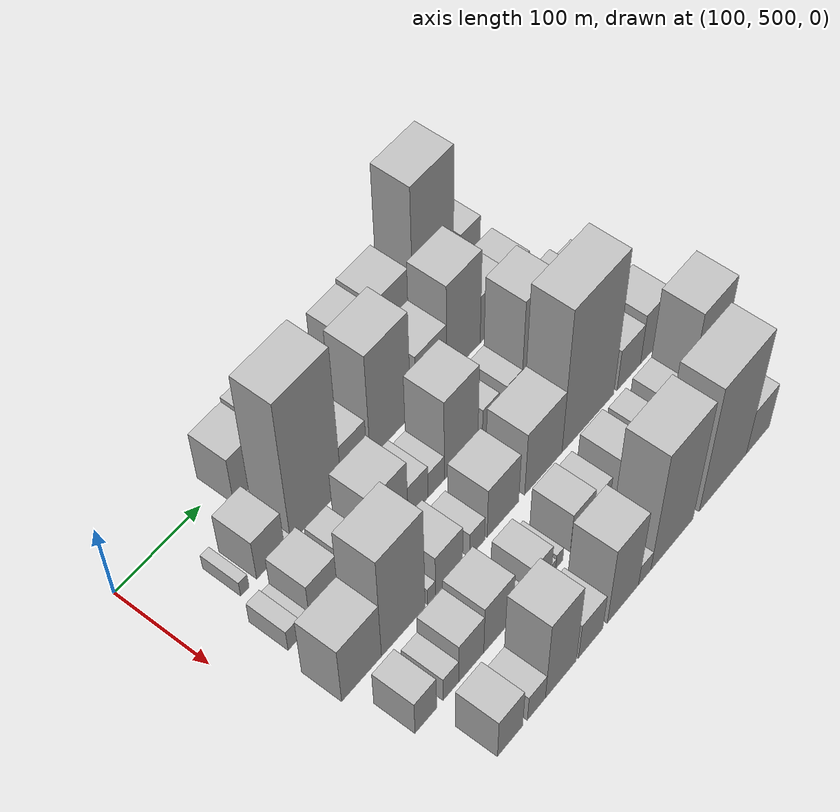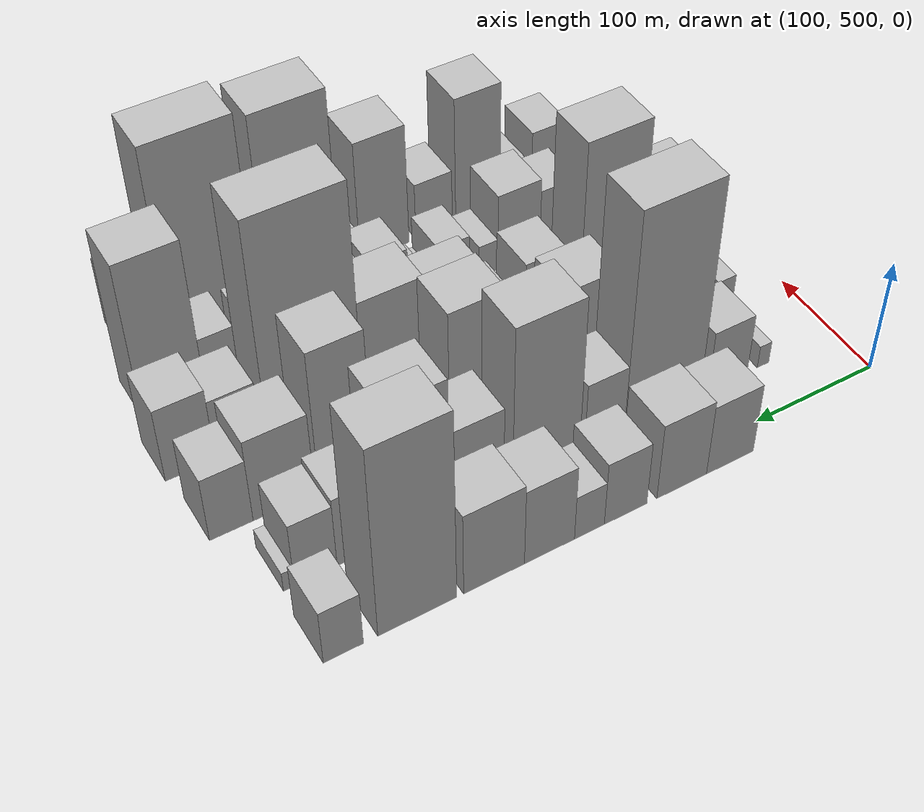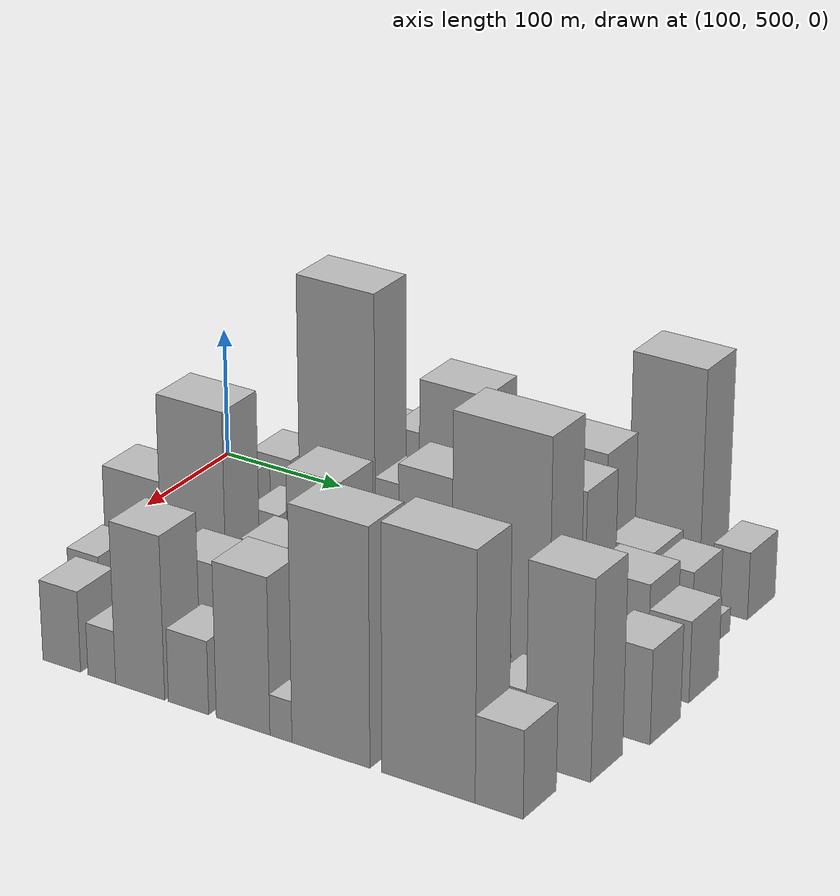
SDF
<sdf version="1.6">
 <world name="default">
  <model name="building_45">
   <static>1</static>
   <pose>100.0000 637.8014 0 0.000000 0.000000 0.000000</pose>
   <link name="link">
    <pose>0 0 33.00 0 0 0</pose>
    <collision name="collision"><geometry><box><size>40.0000 38.9211 66.0000</size></box></geometry></collision>
    <visual name="visual">
     <cast_shadows>0</cast_shadows>
     <geometry><box><size>40.0000 38.9211 66.0000</size></box></geometry>
     <material>
      <script>
       <uri>model://HANNAS_wall/materials/scripts</uri>
       <uri>model://HANNAS_wall/materials/textures</uri>
       <name>vrc/HANNAS_wall</name>
      </script>
     </material>
    </visual>
   </link>
  </model>
  <model name="building_46">
   <static>1</static>
   <pose>100.0000 677.4247 0 0.000000 0.000000 0.000000</pose>
   <link name="link">
    <pose>0 0 36.00 0 0 0</pose>
    <collision name="collision"><geometry><box><size>40.0000 40.3256 72.0000</size></box></geometry></collision>
    <visual name="visual">
     <cast_shadows>0</cast_shadows>
     <geometry><box><size>40.0000 40.3256 72.0000</size></box></geometry>
     <material>
      <script>
       <uri>model://HANNAS_wall/materials/scripts</uri>
       <uri>model://HANNAS_wall/materials/textures</uri>
       <name>vrc/HANNAS_wall</name>
      </script>
     </material>
    </visual>
   </link>
  </model>
  <model name="building_47">
   <static>1</static>
   <pose>100.0000 722.3994 0 0.000000 0.000000 0.000000</pose>
   <link name="link">
    <pose>0 0 30.00 0 0 0</pose>
    <collision name="collision"><geometry><box><size>40.0000 33.6238 60.0000</size></box></geometry></collision>
    <visual name="visual">
     <cast_shadows>0</cast_shadows>
     <geometry><box><size>40.0000 33.6238 60.0000</size></box></geometry>
     <material>
      <script>
       <uri>model://HANNAS_wall/materials/scripts</uri>
       <uri>model://HANNAS_wall/materials/textures</uri>
       <name>vrc/HANNAS_wall</name>
      </script>
     </material>
    </visual>
   </link>
  </model>
  <model name="building_48">
   <static>1</static>
   <pose>100.0000 750.7657 0 0.000000 0.000000 0.000000</pose>
   <link name="link">
    <pose>0 0 21.00 0 0 0</pose>
    <collision name="collision"><geometry><box><size>40.0000 23.1088 42.0000</size></box></geometry></collision>
    <visual name="visual">
     <cast_shadows>0</cast_shadows>
     <geometry><box><size>40.0000 23.1088 42.0000</size></box></geometry>
     <material>
      <script>
       <uri>model://HANNAS_wall/materials/scripts</uri>
       <uri>model://HANNAS_wall/materials/textures</uri>
       <name>vrc/HANNAS_wall</name>
      </script>
     </material>
    </visual>
   </link>
  </model>
  <model name="building_49">
   <static>1</static>
   <pose>100.0000 781.3280 0 0.000000 0.000000 0.000000</pose>
   <link name="link">
    <pose>0 0 36.00 0 0 0</pose>
    <collision name="collision"><geometry><box><size>40.0000 38.0159 72.0000</size></box></geometry></collision>
    <visual name="visual">
     <cast_shadows>0</cast_shadows>
     <geometry><box><size>40.0000 38.0159 72.0000</size></box></geometry>
     <material>
      <script>
       <uri>model://HANNAS_wall/materials/scripts</uri>
       <uri>model://HANNAS_wall/materials/textures</uri>
       <name>vrc/HANNAS_wall</name>
      </script>
     </material>
    </visual>
   </link>
  </model>
  <model name="building_50">
   <static>1</static>
   <pose>100.0000 822.7984 0 0.000000 0.000000 0.000000</pose>
   <link name="link">
    <pose>0 0 39.00 0 0 0</pose>
    <collision name="collision"><geometry><box><size>40.0000 44.9249 78.0000</size></box></geometry></collision>
    <visual name="visual">
     <cast_shadows>0</cast_shadows>
     <geometry><box><size>40.0000 44.9249 78.0000</size></box></geometry>
     <material>
      <script>
       <uri>model://HANNAS_wall/materials/scripts</uri>
       <uri>model://HANNAS_wall/materials/textures</uri>
       <name>vrc/HANNAS_wall</name>
      </script>
     </material>
    </visual>
   </link>
  </model>
  <model name="building_51">
   <static>1</static>
   <pose>100.0000 878.3685 0 0.000000 0.000000 0.000000</pose>
   <link name="link">
    <pose>0 0 88.50 0 0 0</pose>
    <collision name="collision"><geometry><box><size>40.0000 56.2153 177.0000</size></box></geometry></collision>
    <visual name="visual">
     <cast_shadows>0</cast_shadows>
     <geometry><box><size>40.0000 56.2153 177.0000</size></box></geometry>
     <material>
      <script>
       <uri>model://HANNAS_wall/materials/scripts</uri>
       <uri>model://HANNAS_wall/materials/textures</uri>
       <name>vrc/HANNAS_wall</name>
      </script>
     </material>
    </visual>
   </link>
  </model>
  <model name="building_52">
   <static>1</static>
   <pose>100.0000 930.2942 0 0.000000 0.000000 0.000000</pose>
   <link name="link">
    <pose>0 0 25.50 0 0 0</pose>
    <collision name="collision"><geometry><box><size>40.0000 27.6361 51.0000</size></box></geometry></collision>
    <visual name="visual">
     <cast_shadows>0</cast_shadows>
     <geometry><box><size>40.0000 27.6361 51.0000</size></box></geometry>
     <material>
      <script>
       <uri>model://HANNAS_wall/materials/scripts</uri>
       <uri>model://HANNAS_wall/materials/textures</uri>
       <name>vrc/HANNAS_wall</name>
      </script>
     </material>
    </visual>
   </link>
  </model>
  <model name="building_93">
   <static>1</static>
   <pose>160.0000 563.9518 0 0.000000 0.000000 0.000000</pose>
   <link name="link">
    <pose>0 0 10.50 0 0 0</pose>
    <collision name="collision"><geometry><box><size>40.0000 10.0791 21.0000</size></box></geometry></collision>
    <visual name="visual">
     <cast_shadows>0</cast_shadows>
     <geometry><box><size>40.0000 10.0791 21.0000</size></box></geometry>
     <material>
      <script>
       <uri>model://HANNAS_wall/materials/scripts</uri>
       <uri>model://HANNAS_wall/materials/textures</uri>
       <name>vrc/HANNAS_wall</name>
      </script>
     </material>
    </visual>
   </link>
  </model>
  <model name="building_94">
   <static>1</static>
   <pose>160.0000 594.9563 0 0.000000 0.000000 0.000000</pose>
   <link name="link">
    <pose>0 0 28.50 0 0 0</pose>
    <collision name="collision"><geometry><box><size>40.0000 33.9299 57.0000</size></box></geometry></collision>
    <visual name="visual">
     <cast_shadows>0</cast_shadows>
     <geometry><box><size>40.0000 33.9299 57.0000</size></box></geometry>
     <material>
      <script>
       <uri>model://HANNAS_wall/materials/scripts</uri>
       <uri>model://HANNAS_wall/materials/textures</uri>
       <name>vrc/HANNAS_wall</name>
      </script>
     </material>
    </visual>
   </link>
  </model>
  <model name="building_95">
   <static>1</static>
   <pose>160.0000 615.5254 0 0.000000 0.000000 0.000000</pose>
   <link name="link">
    <pose>0 0 7.50 0 0 0</pose>
    <collision name="collision"><geometry><box><size>40.0000 7.2082 15.0000</size></box></geometry></collision>
    <visual name="visual">
     <cast_shadows>0</cast_shadows>
     <geometry><box><size>40.0000 7.2082 15.0000</size></box></geometry>
     <material>
      <script>
       <uri>model://HANNAS_wall/materials/scripts</uri>
       <uri>model://HANNAS_wall/materials/textures</uri>
       <name>vrc/HANNAS_wall</name>
      </script>
     </material>
    </visual>
   </link>
  </model>
  <model name="building_96">
   <static>1</static>
   <pose>160.0000 650.8411 0 0.000000 0.000000 0.000000</pose>
   <link name="link">
    <pose>0 0 100.50 0 0 0</pose>
    <collision name="collision"><geometry><box><size>40.0000 63.4233 201.0000</size></box></geometry></collision>
    <visual name="visual">
     <cast_shadows>0</cast_shadows>
     <geometry><box><size>40.0000 63.4233 201.0000</size></box></geometry>
     <material>
      <script>
       <uri>model://HANNAS_wall/materials/scripts</uri>
       <uri>model://HANNAS_wall/materials/textures</uri>
       <name>vrc/HANNAS_wall</name>
      </script>
     </material>
    </visual>
   </link>
  </model>
  <model name="building_97">
   <static>1</static>
   <pose>160.0000 698.8707 0 0.000000 0.000000 0.000000</pose>
   <link name="link">
    <pose>0 0 31.50 0 0 0</pose>
    <collision name="collision"><geometry><box><size>40.0000 32.6358 63.0000</size></box></geometry></collision>
    <visual name="visual">
     <cast_shadows>0</cast_shadows>
     <geometry><box><size>40.0000 32.6358 63.0000</size></box></geometry>
     <material>
      <script>
       <uri>model://HANNAS_wall/materials/scripts</uri>
       <uri>model://HANNAS_wall/materials/textures</uri>
       <name>vrc/HANNAS_wall</name>
      </script>
     </material>
    </visual>
   </link>
  </model>
  <model name="building_98">
   <static>1</static>
   <pose>160.0000 745.6405 0 0.000000 0.000000 0.000000</pose>
   <link name="link">
    <pose>0 0 73.50 0 0 0</pose>
    <collision name="collision"><geometry><box><size>40.0000 52.9038 147.0000</size></box></geometry></collision>
    <visual name="visual">
     <cast_shadows>0</cast_shadows>
     <geometry><box><size>40.0000 52.9038 147.0000</size></box></geometry>
     <material>
      <script>
       <uri>model://HANNAS_wall/materials/scripts</uri>
       <uri>model://HANNAS_wall/materials/textures</uri>
       <name>vrc/HANNAS_wall</name>
      </script>
     </material>
    </visual>
   </link>
  </model>
  <model name="building_99">
   <static>1</static>
   <pose>160.0000 799.5463 0 0.000000 0.000000 0.000000</pose>
   <link name="link">
    <pose>0 0 39.00 0 0 0</pose>
    <collision name="collision"><geometry><box><size>40.0000 40.9078 78.0000</size></box></geometry></collision>
    <visual name="visual">
     <cast_shadows>0</cast_shadows>
     <geometry><box><size>40.0000 40.9078 78.0000</size></box></geometry>
     <material>
      <script>
       <uri>model://HANNAS_wall/materials/scripts</uri>
       <uri>model://HANNAS_wall/materials/textures</uri>
       <name>vrc/HANNAS_wall</name>
      </script>
     </material>
    </visual>
   </link>
  </model>
  <model name="building_100">
   <static>1</static>
   <pose>160.0000 843.2562 0 0.000000 0.000000 0.000000</pose>
   <link name="link">
    <pose>0 0 64.50 0 0 0</pose>
    <collision name="collision"><geometry><box><size>40.0000 46.5119 129.0000</size></box></geometry></collision>
    <visual name="visual">
     <cast_shadows>0</cast_shadows>
     <geometry><box><size>40.0000 46.5119 129.0000</size></box></geometry>
     <material>
      <script>
       <uri>model://HANNAS_wall/materials/scripts</uri>
       <uri>model://HANNAS_wall/materials/textures</uri>
       <name>vrc/HANNAS_wall</name>
      </script>
     </material>
    </visual>
   </link>
  </model>
  <model name="building_101">
   <static>1</static>
   <pose>160.0000 884.9245 0 0.000000 0.000000 0.000000</pose>
   <link name="link">
    <pose>0 0 33.00 0 0 0</pose>
    <collision name="collision"><geometry><box><size>40.0000 36.8247 66.0000</size></box></geometry></collision>
    <visual name="visual">
     <cast_shadows>0</cast_shadows>
     <geometry><box><size>40.0000 36.8247 66.0000</size></box></geometry>
     <material>
      <script>
       <uri>model://HANNAS_wall/materials/scripts</uri>
       <uri>model://HANNAS_wall/materials/textures</uri>
       <name>vrc/HANNAS_wall</name>
      </script>
     </material>
    </visual>
   </link>
  </model>
  <model name="building_102">
   <static>1</static>
   <pose>160.0000 918.4425 0 0.000000 0.000000 0.000000</pose>
   <link name="link">
    <pose>0 0 30.00 0 0 0</pose>
    <collision name="collision"><geometry><box><size>40.0000 30.2114 60.0000</size></box></geometry></collision>
    <visual name="visual">
     <cast_shadows>0</cast_shadows>
     <geometry><box><size>40.0000 30.2114 60.0000</size></box></geometry>
     <material>
      <script>
       <uri>model://HANNAS_wall/materials/scripts</uri>
       <uri>model://HANNAS_wall/materials/textures</uri>
       <name>vrc/HANNAS_wall</name>
      </script>
     </material>
    </visual>
   </link>
  </model>
  <model name="building_103">
   <static>1</static>
   <pose>160.0000 937.4307 0 0.000000 0.000000 0.000000</pose>
   <link name="link">
    <pose>0 0 9.00 0 0 0</pose>
    <collision name="collision"><geometry><box><size>40.0000 7.7650 18.0000</size></box></geometry></collision>
    <visual name="visual">
     <cast_shadows>0</cast_shadows>
     <geometry><box><size>40.0000 7.7650 18.0000</size></box></geometry>
     <material>
      <script>
       <uri>model://HANNAS_wall/materials/scripts</uri>
       <uri>model://HANNAS_wall/materials/textures</uri>
       <name>vrc/HANNAS_wall</name>
      </script>
     </material>
    </visual>
   </link>
  </model>
  <model name="building_151">
   <static>1</static>
   <pose>220.0000 553.8781 0 0.000000 0.000000 0.000000</pose>
   <link name="link">
    <pose>0 0 15.00 0 0 0</pose>
    <collision name="collision"><geometry><box><size>40.0000 15.5155 30.0000</size></box></geometry></collision>
    <visual name="visual">
     <cast_shadows>0</cast_shadows>
     <geometry><box><size>40.0000 15.5155 30.0000</size></box></geometry>
     <material>
      <script>
       <uri>model://HANNAS_wall/materials/scripts</uri>
       <uri>model://HANNAS_wall/materials/textures</uri>
       <name>vrc/HANNAS_wall</name>
      </script>
     </material>
    </visual>
   </link>
  </model>
  <model name="building_152">
   <static>1</static>
   <pose>220.0000 567.1678 0 0.000000 0.000000 0.000000</pose>
   <link name="link">
    <pose>0 0 12.00 0 0 0</pose>
    <collision name="collision"><geometry><box><size>40.0000 11.0638 24.0000</size></box></geometry></collision>
    <visual name="visual">
     <cast_shadows>0</cast_shadows>
     <geometry><box><size>40.0000 11.0638 24.0000</size></box></geometry>
     <material>
      <script>
       <uri>model://HANNAS_wall/materials/scripts</uri>
       <uri>model://HANNAS_wall/materials/textures</uri>
       <name>vrc/HANNAS_wall</name>
      </script>
     </material>
    </visual>
   </link>
  </model>
  <model name="building_153">
   <static>1</static>
   <pose>220.0000 590.3313 0 0.000000 0.000000 0.000000</pose>
   <link name="link">
    <pose>0 0 31.50 0 0 0</pose>
    <collision name="collision"><geometry><box><size>40.0000 35.2631 63.0000</size></box></geometry></collision>
    <visual name="visual">
     <cast_shadows>0</cast_shadows>
     <geometry><box><size>40.0000 35.2631 63.0000</size></box></geometry>
     <material>
      <script>
       <uri>model://HANNAS_wall/materials/scripts</uri>
       <uri>model://HANNAS_wall/materials/textures</uri>
       <name>vrc/HANNAS_wall</name>
      </script>
     </material>
    </visual>
   </link>
  </model>
  <model name="building_154">
   <static>1</static>
   <pose>220.0000 630.1843 0 0.000000 0.000000 0.000000</pose>
   <link name="link">
    <pose>0 0 24.00 0 0 0</pose>
    <collision name="collision"><geometry><box><size>40.0000 26.4429 48.0000</size></box></geometry></collision>
    <visual name="visual">
     <cast_shadows>0</cast_shadows>
     <geometry><box><size>40.0000 26.4429 48.0000</size></box></geometry>
     <material>
      <script>
       <uri>model://HANNAS_wall/materials/scripts</uri>
       <uri>model://HANNAS_wall/materials/textures</uri>
       <name>vrc/HANNAS_wall</name>
      </script>
     </material>
    </visual>
   </link>
  </model>
  <model name="building_155">
   <static>1</static>
   <pose>220.0000 671.6980 0 0.000000 0.000000 0.000000</pose>
   <link name="link">
    <pose>0 0 43.50 0 0 0</pose>
    <collision name="collision"><geometry><box><size>40.0000 44.5844 87.0000</size></box></geometry></collision>
    <visual name="visual">
     <cast_shadows>0</cast_shadows>
     <geometry><box><size>40.0000 44.5844 87.0000</size></box></geometry>
     <material>
      <script>
       <uri>model://HANNAS_wall/materials/scripts</uri>
       <uri>model://HANNAS_wall/materials/textures</uri>
       <name>vrc/HANNAS_wall</name>
      </script>
     </material>
    </visual>
   </link>
  </model>
  <model name="building_156">
   <static>1</static>
   <pose>220.0000 706.8639 0 0.000000 0.000000 0.000000</pose>
   <link name="link">
    <pose>0 0 24.00 0 0 0</pose>
    <collision name="collision"><geometry><box><size>40.0000 25.7475 48.0000</size></box></geometry></collision>
    <visual name="visual">
     <cast_shadows>0</cast_shadows>
     <geometry><box><size>40.0000 25.7475 48.0000</size></box></geometry>
     <material>
      <script>
       <uri>model://HANNAS_wall/materials/scripts</uri>
       <uri>model://HANNAS_wall/materials/textures</uri>
       <name>vrc/HANNAS_wall</name>
      </script>
     </material>
    </visual>
   </link>
  </model>
  <model name="building_157">
   <static>1</static>
   <pose>220.0000 730.2820 0 0.000000 0.000000 0.000000</pose>
   <link name="link">
    <pose>0 0 18.00 0 0 0</pose>
    <collision name="collision"><geometry><box><size>40.0000 21.0887 36.0000</size></box></geometry></collision>
    <visual name="visual">
     <cast_shadows>0</cast_shadows>
     <geometry><box><size>40.0000 21.0887 36.0000</size></box></geometry>
     <material>
      <script>
       <uri>model://HANNAS_wall/materials/scripts</uri>
       <uri>model://HANNAS_wall/materials/textures</uri>
       <name>vrc/HANNAS_wall</name>
      </script>
     </material>
    </visual>
   </link>
  </model>
  <model name="building_158">
   <static>1</static>
   <pose>220.0000 763.1546 0 0.000000 0.000000 0.000000</pose>
   <link name="link">
    <pose>0 0 57.00 0 0 0</pose>
    <collision name="collision"><geometry><box><size>40.0000 44.6565 114.0000</size></box></geometry></collision>
    <visual name="visual">
     <cast_shadows>0</cast_shadows>
     <geometry><box><size>40.0000 44.6565 114.0000</size></box></geometry>
     <material>
      <script>
       <uri>model://HANNAS_wall/materials/scripts</uri>
       <uri>model://HANNAS_wall/materials/textures</uri>
       <name>vrc/HANNAS_wall</name>
      </script>
     </material>
    </visual>
   </link>
  </model>
  <model name="building_159">
   <static>1</static>
   <pose>220.0000 802.5805 0 0.000000 0.000000 0.000000</pose>
   <link name="link">
    <pose>0 0 21.00 0 0 0</pose>
    <collision name="collision"><geometry><box><size>40.0000 22.1954 42.0000</size></box></geometry></collision>
    <visual name="visual">
     <cast_shadows>0</cast_shadows>
     <geometry><box><size>40.0000 22.1954 42.0000</size></box></geometry>
     <material>
      <script>
       <uri>model://HANNAS_wall/materials/scripts</uri>
       <uri>model://HANNAS_wall/materials/textures</uri>
       <name>vrc/HANNAS_wall</name>
      </script>
     </material>
    </visual>
   </link>
  </model>
  <model name="building_160">
   <static>1</static>
   <pose>220.0000 834.3109 0 0.000000 0.000000 0.000000</pose>
   <link name="link">
    <pose>0 0 19.50 0 0 0</pose>
    <collision name="collision"><geometry><box><size>40.0000 21.2653 39.0000</size></box></geometry></collision>
    <visual name="visual">
     <cast_shadows>0</cast_shadows>
     <geometry><box><size>40.0000 21.2653 39.0000</size></box></geometry>
     <material>
      <script>
       <uri>model://HANNAS_wall/materials/scripts</uri>
       <uri>model://HANNAS_wall/materials/textures</uri>
       <name>vrc/HANNAS_wall</name>
      </script>
     </material>
    </visual>
   </link>
  </model>
  <model name="building_161">
   <static>1</static>
   <pose>220.0000 865.2073 0 0.000000 0.000000 0.000000</pose>
   <link name="link">
    <pose>0 0 66.00 0 0 0</pose>
    <collision name="collision"><geometry><box><size>40.0000 40.5275 132.0000</size></box></geometry></collision>
    <visual name="visual">
     <cast_shadows>0</cast_shadows>
     <geometry><box><size>40.0000 40.5275 132.0000</size></box></geometry>
     <material>
      <script>
       <uri>model://HANNAS_wall/materials/scripts</uri>
       <uri>model://HANNAS_wall/materials/textures</uri>
       <name>vrc/HANNAS_wall</name>
      </script>
     </material>
    </visual>
   </link>
  </model>
  <model name="building_162">
   <static>1</static>
   <pose>220.0000 911.0521 0 0.000000 0.000000 0.000000</pose>
   <link name="link">
    <pose>0 0 39.00 0 0 0</pose>
    <collision name="collision"><geometry><box><size>40.0000 45.1621 78.0000</size></box></geometry></collision>
    <visual name="visual">
     <cast_shadows>0</cast_shadows>
     <geometry><box><size>40.0000 45.1621 78.0000</size></box></geometry>
     <material>
      <script>
       <uri>model://HANNAS_wall/materials/scripts</uri>
       <uri>model://HANNAS_wall/materials/textures</uri>
       <name>vrc/HANNAS_wall</name>
      </script>
     </material>
    </visual>
   </link>
  </model>
  <model name="building_163">
   <static>1</static>
   <pose>220.0000 949.1887 0 0.000000 0.000000 0.000000</pose>
   <link name="link">
    <pose>0 0 30.00 0 0 0</pose>
    <collision name="collision"><geometry><box><size>40.0000 31.1111 60.0000</size></box></geometry></collision>
    <visual name="visual">
     <cast_shadows>0</cast_shadows>
     <geometry><box><size>40.0000 31.1111 60.0000</size></box></geometry>
     <material>
      <script>
       <uri>model://HANNAS_wall/materials/scripts</uri>
       <uri>model://HANNAS_wall/materials/textures</uri>
       <name>vrc/HANNAS_wall</name>
      </script>
     </material>
    </visual>
   </link>
  </model>
  <model name="building_204">
   <static>1</static>
   <pose>280.0000 562.4939 0 0.000000 0.000000 0.000000</pose>
   <link name="link">
    <pose>0 0 42.00 0 0 0</pose>
    <collision name="collision"><geometry><box><size>40.0000 47.8390 84.0000</size></box></geometry></collision>
    <visual name="visual">
     <cast_shadows>0</cast_shadows>
     <geometry><box><size>40.0000 47.8390 84.0000</size></box></geometry>
     <material>
      <script>
       <uri>model://HANNAS_wall/materials/scripts</uri>
       <uri>model://HANNAS_wall/materials/textures</uri>
       <name>vrc/HANNAS_wall</name>
      </script>
     </material>
    </visual>
   </link>
  </model>
  <model name="building_205">
   <static>1</static>
   <pose>280.0000 613.3672 0 0.000000 0.000000 0.000000</pose>
   <link name="link">
    <pose>0 0 75.00 0 0 0</pose>
    <collision name="collision"><geometry><box><size>40.0000 53.9077 150.0000</size></box></geometry></collision>
    <visual name="visual">
     <cast_shadows>0</cast_shadows>
     <geometry><box><size>40.0000 53.9077 150.0000</size></box></geometry>
     <material>
      <script>
       <uri>model://HANNAS_wall/materials/scripts</uri>
       <uri>model://HANNAS_wall/materials/textures</uri>
       <name>vrc/HANNAS_wall</name>
      </script>
     </material>
    </visual>
   </link>
  </model>
  <model name="building_206">
   <static>1</static>
   <pose>280.0000 648.3603 0 0.000000 0.000000 0.000000</pose>
   <link name="link">
    <pose>0 0 12.00 0 0 0</pose>
    <collision name="collision"><geometry><box><size>40.0000 10.0784 24.0000</size></box></geometry></collision>
    <visual name="visual">
     <cast_shadows>0</cast_shadows>
     <geometry><box><size>40.0000 10.0784 24.0000</size></box></geometry>
     <material>
      <script>
       <uri>model://HANNAS_wall/materials/scripts</uri>
       <uri>model://HANNAS_wall/materials/textures</uri>
       <name>vrc/HANNAS_wall</name>
      </script>
     </material>
    </visual>
   </link>
  </model>
  <model name="building_207">
   <static>1</static>
   <pose>280.0000 670.5976 0 0.000000 0.000000 0.000000</pose>
   <link name="link">
    <pose>0 0 30.00 0 0 0</pose>
    <collision name="collision"><geometry><box><size>40.0000 34.3962 60.0000</size></box></geometry></collision>
    <visual name="visual">
     <cast_shadows>0</cast_shadows>
     <geometry><box><size>40.0000 34.3962 60.0000</size></box></geometry>
     <material>
      <script>
       <uri>model://HANNAS_wall/materials/scripts</uri>
       <uri>model://HANNAS_wall/materials/textures</uri>
       <name>vrc/HANNAS_wall</name>
      </script>
     </material>
    </visual>
   </link>
  </model>
  <model name="building_208">
   <static>1</static>
   <pose>280.0000 706.7250 0 0.000000 0.000000 0.000000</pose>
   <link name="link">
    <pose>0 0 18.00 0 0 0</pose>
    <collision name="collision"><geometry><box><size>40.0000 19.8585 36.0000</size></box></geometry></collision>
    <visual name="visual">
     <cast_shadows>0</cast_shadows>
     <geometry><box><size>40.0000 19.8585 36.0000</size></box></geometry>
     <material>
      <script>
       <uri>model://HANNAS_wall/materials/scripts</uri>
       <uri>model://HANNAS_wall/materials/textures</uri>
       <name>vrc/HANNAS_wall</name>
      </script>
     </material>
    </visual>
   </link>
  </model>
  <model name="building_209">
   <static>1</static>
   <pose>280.0000 740.6893 0 0.000000 0.000000 0.000000</pose>
   <link name="link">
    <pose>0 0 36.00 0 0 0</pose>
    <collision name="collision"><geometry><box><size>40.0000 42.0701 72.0000</size></box></geometry></collision>
    <visual name="visual">
     <cast_shadows>0</cast_shadows>
     <geometry><box><size>40.0000 42.0701 72.0000</size></box></geometry>
     <material>
      <script>
       <uri>model://HANNAS_wall/materials/scripts</uri>
       <uri>model://HANNAS_wall/materials/textures</uri>
       <name>vrc/HANNAS_wall</name>
      </script>
     </material>
    </visual>
   </link>
  </model>
  <model name="building_210">
   <static>1</static>
   <pose>280.0000 795.2136 0 0.000000 0.000000 0.000000</pose>
   <link name="link">
    <pose>0 0 45.00 0 0 0</pose>
    <collision name="collision"><geometry><box><size>40.0000 50.9786 90.0000</size></box></geometry></collision>
    <visual name="visual">
     <cast_shadows>0</cast_shadows>
     <geometry><box><size>40.0000 50.9786 90.0000</size></box></geometry>
     <material>
      <script>
       <uri>model://HANNAS_wall/materials/scripts</uri>
       <uri>model://HANNAS_wall/materials/textures</uri>
       <name>vrc/HANNAS_wall</name>
      </script>
     </material>
    </visual>
   </link>
  </model>
  <model name="building_211">
   <static>1</static>
   <pose>280.0000 857.3162 0 0.000000 0.000000 0.000000</pose>
   <link name="link">
    <pose>0 0 99.00 0 0 0</pose>
    <collision name="collision"><geometry><box><size>40.0000 73.2265 198.0000</size></box></geometry></collision>
    <visual name="visual">
     <cast_shadows>0</cast_shadows>
     <geometry><box><size>40.0000 73.2265 198.0000</size></box></geometry>
     <material>
      <script>
       <uri>model://HANNAS_wall/materials/scripts</uri>
       <uri>model://HANNAS_wall/materials/textures</uri>
       <name>vrc/HANNAS_wall</name>
      </script>
     </material>
    </visual>
   </link>
  </model>
  <model name="building_212">
   <static>1</static>
   <pose>280.0000 915.9544 0 0.000000 0.000000 0.000000</pose>
   <link name="link">
    <pose>0 0 28.50 0 0 0</pose>
    <collision name="collision"><geometry><box><size>40.0000 34.0499 57.0000</size></box></geometry></collision>
    <visual name="visual">
     <cast_shadows>0</cast_shadows>
     <geometry><box><size>40.0000 34.0499 57.0000</size></box></geometry>
     <material>
      <script>
       <uri>model://HANNAS_wall/materials/scripts</uri>
       <uri>model://HANNAS_wall/materials/textures</uri>
       <name>vrc/HANNAS_wall</name>
      </script>
     </material>
    </visual>
   </link>
  </model>
  <model name="building_213">
   <static>1</static>
   <pose>280.0000 951.2048 0 0.000000 0.000000 0.000000</pose>
   <link name="link">
    <pose>0 0 34.50 0 0 0</pose>
    <collision name="collision"><geometry><box><size>40.0000 36.4509 69.0000</size></box></geometry></collision>
    <visual name="visual">
     <cast_shadows>0</cast_shadows>
     <geometry><box><size>40.0000 36.4509 69.0000</size></box></geometry>
     <material>
      <script>
       <uri>model://HANNAS_wall/materials/scripts</uri>
       <uri>model://HANNAS_wall/materials/textures</uri>
       <name>vrc/HANNAS_wall</name>
      </script>
     </material>
    </visual>
   </link>
  </model>
  <model name="building_259">
   <static>1</static>
   <pose>340.0000 565.6955 0 0.000000 0.000000 0.000000</pose>
   <link name="link">
    <pose>0 0 25.50 0 0 0</pose>
    <collision name="collision"><geometry><box><size>40.0000 26.2463 51.0000</size></box></geometry></collision>
    <visual name="visual">
     <cast_shadows>0</cast_shadows>
     <geometry><box><size>40.0000 26.2463 51.0000</size></box></geometry>
     <material>
      <script>
       <uri>model://HANNAS_wall/materials/scripts</uri>
       <uri>model://HANNAS_wall/materials/textures</uri>
       <name>vrc/HANNAS_wall</name>
      </script>
     </material>
    </visual>
   </link>
  </model>
  <model name="building_260">
   <static>1</static>
   <pose>340.0000 596.4072 0 0.000000 0.000000 0.000000</pose>
   <link name="link">
    <pose>0 0 18.00 0 0 0</pose>
    <collision name="collision"><geometry><box><size>40.0000 19.1770 36.0000</size></box></geometry></collision>
    <visual name="visual">
     <cast_shadows>0</cast_shadows>
     <geometry><box><size>40.0000 19.1770 36.0000</size></box></geometry>
     <material>
      <script>
       <uri>model://HANNAS_wall/materials/scripts</uri>
       <uri>model://HANNAS_wall/materials/textures</uri>
       <name>vrc/HANNAS_wall</name>
      </script>
     </material>
    </visual>
   </link>
  </model>
  <model name="building_261">
   <static>1</static>
   <pose>340.0000 621.6274 0 0.000000 0.000000 0.000000</pose>
   <link name="link">
    <pose>0 0 30.00 0 0 0</pose>
    <collision name="collision"><geometry><box><size>40.0000 31.2634 60.0000</size></box></geometry></collision>
    <visual name="visual">
     <cast_shadows>0</cast_shadows>
     <geometry><box><size>40.0000 31.2634 60.0000</size></box></geometry>
     <material>
      <script>
       <uri>model://HANNAS_wall/materials/scripts</uri>
       <uri>model://HANNAS_wall/materials/textures</uri>
       <name>vrc/HANNAS_wall</name>
      </script>
     </material>
    </visual>
   </link>
  </model>
  <model name="building_262">
   <static>1</static>
   <pose>340.0000 655.7839 0 0.000000 0.000000 0.000000</pose>
   <link name="link">
    <pose>0 0 36.00 0 0 0</pose>
    <collision name="collision"><geometry><box><size>40.0000 37.0496 72.0000</size></box></geometry></collision>
    <visual name="visual">
     <cast_shadows>0</cast_shadows>
     <geometry><box><size>40.0000 37.0496 72.0000</size></box></geometry>
     <material>
      <script>
       <uri>model://HANNAS_wall/materials/scripts</uri>
       <uri>model://HANNAS_wall/materials/textures</uri>
       <name>vrc/HANNAS_wall</name>
      </script>
     </material>
    </visual>
   </link>
  </model>
  <model name="building_263">
   <static>1</static>
   <pose>340.0000 682.3884 0 0.000000 0.000000 0.000000</pose>
   <link name="link">
    <pose>0 0 15.00 0 0 0</pose>
    <collision name="collision"><geometry><box><size>40.0000 16.1594 30.0000</size></box></geometry></collision>
    <visual name="visual">
     <cast_shadows>0</cast_shadows>
     <geometry><box><size>40.0000 16.1594 30.0000</size></box></geometry>
     <material>
      <script>
       <uri>model://HANNAS_wall/materials/scripts</uri>
       <uri>model://HANNAS_wall/materials/textures</uri>
       <name>vrc/HANNAS_wall</name>
      </script>
     </material>
    </visual>
   </link>
  </model>
  <model name="building_264">
   <static>1</static>
   <pose>340.0000 711.5895 0 0.000000 0.000000 0.000000</pose>
   <link name="link">
    <pose>0 0 22.50 0 0 0</pose>
    <collision name="collision"><geometry><box><size>40.0000 26.2430 45.0000</size></box></geometry></collision>
    <visual name="visual">
     <cast_shadows>0</cast_shadows>
     <geometry><box><size>40.0000 26.2430 45.0000</size></box></geometry>
     <material>
      <script>
       <uri>model://HANNAS_wall/materials/scripts</uri>
       <uri>model://HANNAS_wall/materials/textures</uri>
       <name>vrc/HANNAS_wall</name>
      </script>
     </material>
    </visual>
   </link>
  </model>
  <model name="building_265">
   <static>1</static>
   <pose>340.0000 727.7577 0 0.000000 0.000000 0.000000</pose>
   <link name="link">
    <pose>0 0 7.50 0 0 0</pose>
    <collision name="collision"><geometry><box><size>40.0000 6.0934 15.0000</size></box></geometry></collision>
    <visual name="visual">
     <cast_shadows>0</cast_shadows>
     <geometry><box><size>40.0000 6.0934 15.0000</size></box></geometry>
     <material>
      <script>
       <uri>model://HANNAS_wall/materials/scripts</uri>
       <uri>model://HANNAS_wall/materials/textures</uri>
       <name>vrc/HANNAS_wall</name>
      </script>
     </material>
    </visual>
   </link>
  </model>
  <model name="building_266">
   <static>1</static>
   <pose>340.0000 735.4295 0 0.000000 0.000000 0.000000</pose>
   <link name="link">
    <pose>0 0 10.50 0 0 0</pose>
    <collision name="collision"><geometry><box><size>40.0000 9.2501 21.0000</size></box></geometry></collision>
    <visual name="visual">
     <cast_shadows>0</cast_shadows>
     <geometry><box><size>40.0000 9.2501 21.0000</size></box></geometry>
     <material>
      <script>
       <uri>model://HANNAS_wall/materials/scripts</uri>
       <uri>model://HANNAS_wall/materials/textures</uri>
       <name>vrc/HANNAS_wall</name>
      </script>
     </material>
    </visual>
   </link>
  </model>
  <model name="building_267">
   <static>1</static>
   <pose>340.0000 765.0970 0 0.000000 0.000000 0.000000</pose>
   <link name="link">
    <pose>0 0 28.50 0 0 0</pose>
    <collision name="collision"><geometry><box><size>40.0000 30.0851 57.0000</size></box></geometry></collision>
    <visual name="visual">
     <cast_shadows>0</cast_shadows>
     <geometry><box><size>40.0000 30.0851 57.0000</size></box></geometry>
     <material>
      <script>
       <uri>model://HANNAS_wall/materials/scripts</uri>
       <uri>model://HANNAS_wall/materials/textures</uri>
       <name>vrc/HANNAS_wall</name>
      </script>
     </material>
    </visual>
   </link>
  </model>
  <model name="building_268">
   <static>1</static>
   <pose>340.0000 791.7230 0 0.000000 0.000000 0.000000</pose>
   <link name="link">
    <pose>0 0 22.50 0 0 0</pose>
    <collision name="collision"><geometry><box><size>40.0000 23.1669 45.0000</size></box></geometry></collision>
    <visual name="visual">
     <cast_shadows>0</cast_shadows>
     <geometry><box><size>40.0000 23.1669 45.0000</size></box></geometry>
     <material>
      <script>
       <uri>model://HANNAS_wall/materials/scripts</uri>
       <uri>model://HANNAS_wall/materials/textures</uri>
       <name>vrc/HANNAS_wall</name>
      </script>
     </material>
    </visual>
   </link>
  </model>
  <model name="building_269">
   <static>1</static>
   <pose>340.0000 828.6194 0 0.000000 0.000000 0.000000</pose>
   <link name="link">
    <pose>0 0 28.50 0 0 0</pose>
    <collision name="collision"><geometry><box><size>40.0000 30.6259 57.0000</size></box></geometry></collision>
    <visual name="visual">
     <cast_shadows>0</cast_shadows>
     <geometry><box><size>40.0000 30.6259 57.0000</size></box></geometry>
     <material>
      <script>
       <uri>model://HANNAS_wall/materials/scripts</uri>
       <uri>model://HANNAS_wall/materials/textures</uri>
       <name>vrc/HANNAS_wall</name>
      </script>
     </material>
    </visual>
   </link>
  </model>
  <model name="building_270">
   <static>1</static>
   <pose>340.0000 865.1594 0 0.000000 0.000000 0.000000</pose>
   <link name="link">
    <pose>0 0 24.00 0 0 0</pose>
    <collision name="collision"><geometry><box><size>40.0000 24.4541 48.0000</size></box></geometry></collision>
    <visual name="visual">
     <cast_shadows>0</cast_shadows>
     <geometry><box><size>40.0000 24.4541 48.0000</size></box></geometry>
     <material>
      <script>
       <uri>model://HANNAS_wall/materials/scripts</uri>
       <uri>model://HANNAS_wall/materials/textures</uri>
       <name>vrc/HANNAS_wall</name>
      </script>
     </material>
    </visual>
   </link>
  </model>
  <model name="building_271">
   <static>1</static>
   <pose>340.0000 899.7351 0 0.000000 0.000000 0.000000</pose>
   <link name="link">
    <pose>0 0 25.50 0 0 0</pose>
    <collision name="collision"><geometry><box><size>40.0000 26.6973 51.0000</size></box></geometry></collision>
    <visual name="visual">
     <cast_shadows>0</cast_shadows>
     <geometry><box><size>40.0000 26.6973 51.0000</size></box></geometry>
     <material>
      <script>
       <uri>model://HANNAS_wall/materials/scripts</uri>
       <uri>model://HANNAS_wall/materials/textures</uri>
       <name>vrc/HANNAS_wall</name>
      </script>
     </material>
    </visual>
   </link>
  </model>
  <model name="building_272">
   <static>1</static>
   <pose>340.0000 936.8552 0 0.000000 0.000000 0.000000</pose>
   <link name="link">
    <pose>0 0 72.00 0 0 0</pose>
    <collision name="collision"><geometry><box><size>40.0000 47.5430 144.0000</size></box></geometry></collision>
    <visual name="visual">
     <cast_shadows>0</cast_shadows>
     <geometry><box><size>40.0000 47.5430 144.0000</size></box></geometry>
     <material>
      <script>
       <uri>model://HANNAS_wall/materials/scripts</uri>
       <uri>model://HANNAS_wall/materials/textures</uri>
       <name>vrc/HANNAS_wall</name>
      </script>
     </material>
    </visual>
   </link>
  </model>
  <model name="building_317">
   <static>1</static>
   <pose>400.0000 591.6175 0 0.000000 0.000000 0.000000</pose>
   <link name="link">
    <pose>0 0 30.00 0 0 0</pose>
    <collision name="collision"><geometry><box><size>40.0000 31.2413 60.0000</size></box></geometry></collision>
    <visual name="visual">
     <cast_shadows>0</cast_shadows>
     <geometry><box><size>40.0000 31.2413 60.0000</size></box></geometry>
     <material>
      <script>
       <uri>model://HANNAS_wall/materials/scripts</uri>
       <uri>model://HANNAS_wall/materials/textures</uri>
       <name>vrc/HANNAS_wall</name>
      </script>
     </material>
    </visual>
   </link>
  </model>
  <model name="building_318">
   <static>1</static>
   <pose>400.0000 624.5858 0 0.000000 0.000000 0.000000</pose>
   <link name="link">
    <pose>0 0 19.50 0 0 0</pose>
    <collision name="collision"><geometry><box><size>40.0000 22.6953 39.0000</size></box></geometry></collision>
    <visual name="visual">
     <cast_shadows>0</cast_shadows>
     <geometry><box><size>40.0000 22.6953 39.0000</size></box></geometry>
     <material>
      <script>
       <uri>model://HANNAS_wall/materials/scripts</uri>
       <uri>model://HANNAS_wall/materials/textures</uri>
       <name>vrc/HANNAS_wall</name>
      </script>
     </material>
    </visual>
   </link>
  </model>
  <model name="building_319">
   <static>1</static>
   <pose>400.0000 655.7921 0 0.000000 0.000000 0.000000</pose>
   <link name="link">
    <pose>0 0 60.00 0 0 0</pose>
    <collision name="collision"><geometry><box><size>40.0000 39.7171 120.0000</size></box></geometry></collision>
    <visual name="visual">
     <cast_shadows>0</cast_shadows>
     <geometry><box><size>40.0000 39.7171 120.0000</size></box></geometry>
     <material>
      <script>
       <uri>model://HANNAS_wall/materials/scripts</uri>
       <uri>model://HANNAS_wall/materials/textures</uri>
       <name>vrc/HANNAS_wall</name>
      </script>
     </material>
    </visual>
   </link>
  </model>
  <model name="building_320">
   <static>1</static>
   <pose>400.0000 694.6922 0 0.000000 0.000000 0.000000</pose>
   <link name="link">
    <pose>0 0 27.00 0 0 0</pose>
    <collision name="collision"><geometry><box><size>40.0000 32.0832 54.0000</size></box></geometry></collision>
    <visual name="visual">
     <cast_shadows>0</cast_shadows>
     <geometry><box><size>40.0000 32.0832 54.0000</size></box></geometry>
     <material>
      <script>
       <uri>model://HANNAS_wall/materials/scripts</uri>
       <uri>model://HANNAS_wall/materials/textures</uri>
       <name>vrc/HANNAS_wall</name>
      </script>
     </material>
    </visual>
   </link>
  </model>
  <model name="building_321">
   <static>1</static>
   <pose>400.0000 737.7121 0 0.000000 0.000000 0.000000</pose>
   <link name="link">
    <pose>0 0 57.00 0 0 0</pose>
    <collision name="collision"><geometry><box><size>40.0000 41.9564 114.0000</size></box></geometry></collision>
    <visual name="visual">
     <cast_shadows>0</cast_shadows>
     <geometry><box><size>40.0000 41.9564 114.0000</size></box></geometry>
     <material>
      <script>
       <uri>model://HANNAS_wall/materials/scripts</uri>
       <uri>model://HANNAS_wall/materials/textures</uri>
       <name>vrc/HANNAS_wall</name>
      </script>
     </material>
    </visual>
   </link>
  </model>
  <model name="building_322">
   <static>1</static>
   <pose>400.0000 767.1877 0 0.000000 0.000000 0.000000</pose>
   <link name="link">
    <pose>0 0 15.00 0 0 0</pose>
    <collision name="collision"><geometry><box><size>40.0000 16.9949 30.0000</size></box></geometry></collision>
    <visual name="visual">
     <cast_shadows>0</cast_shadows>
     <geometry><box><size>40.0000 16.9949 30.0000</size></box></geometry>
     <material>
      <script>
       <uri>model://HANNAS_wall/materials/scripts</uri>
       <uri>model://HANNAS_wall/materials/textures</uri>
       <name>vrc/HANNAS_wall</name>
      </script>
     </material>
    </visual>
   </link>
  </model>
  <model name="building_323">
   <static>1</static>
   <pose>400.0000 805.3648 0 0.000000 0.000000 0.000000</pose>
   <link name="link">
    <pose>0 0 85.50 0 0 0</pose>
    <collision name="collision"><geometry><box><size>40.0000 59.3594 171.0000</size></box></geometry></collision>
    <visual name="visual">
     <cast_shadows>0</cast_shadows>
     <geometry><box><size>40.0000 59.3594 171.0000</size></box></geometry>
     <material>
      <script>
       <uri>model://HANNAS_wall/materials/scripts</uri>
       <uri>model://HANNAS_wall/materials/textures</uri>
       <name>vrc/HANNAS_wall</name>
      </script>
     </material>
    </visual>
   </link>
  </model>
  <model name="building_324">
   <static>1</static>
   <pose>400.0000 878.3952 0 0.000000 0.000000 0.000000</pose>
   <link name="link">
    <pose>0 0 88.50 0 0 0</pose>
    <collision name="collision"><geometry><box><size>40.0000 68.7013 177.0000</size></box></geometry></collision>
    <visual name="visual">
     <cast_shadows>0</cast_shadows>
     <geometry><box><size>40.0000 68.7013 177.0000</size></box></geometry>
     <material>
      <script>
       <uri>model://HANNAS_wall/materials/scripts</uri>
       <uri>model://HANNAS_wall/materials/textures</uri>
       <name>vrc/HANNAS_wall</name>
      </script>
     </material>
    </visual>
   </link>
  </model>
  <model name="building_325">
   <static>1</static>
   <pose>400.0000 930.0683 0 0.000000 0.000000 0.000000</pose>
   <link name="link">
    <pose>0 0 31.50 0 0 0</pose>
    <collision name="collision"><geometry><box><size>40.0000 34.6447 63.0000</size></box></geometry></collision>
    <visual name="visual">
     <cast_shadows>0</cast_shadows>
     <geometry><box><size>40.0000 34.6447 63.0000</size></box></geometry>
     <material>
      <script>
       <uri>model://HANNAS_wall/materials/scripts</uri>
       <uri>model://HANNAS_wall/materials/textures</uri>
       <name>vrc/HANNAS_wall</name>
      </script>
     </material>
    </visual>
   </link>
  </model>
 </world>
</sdf>
